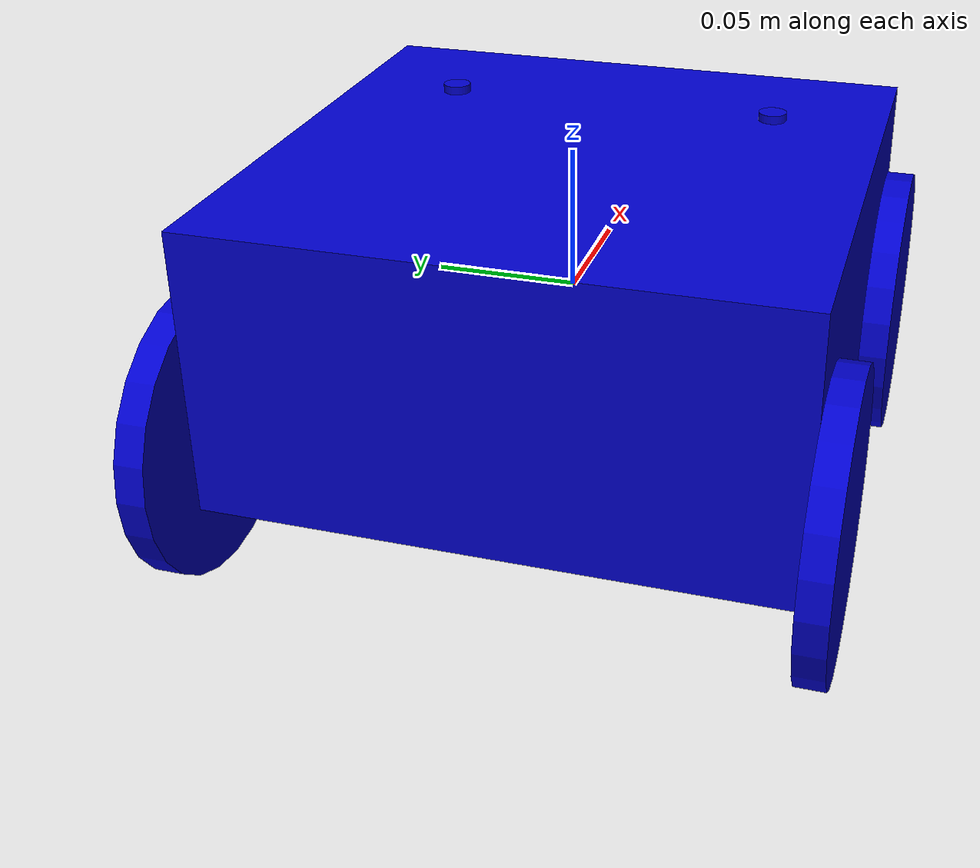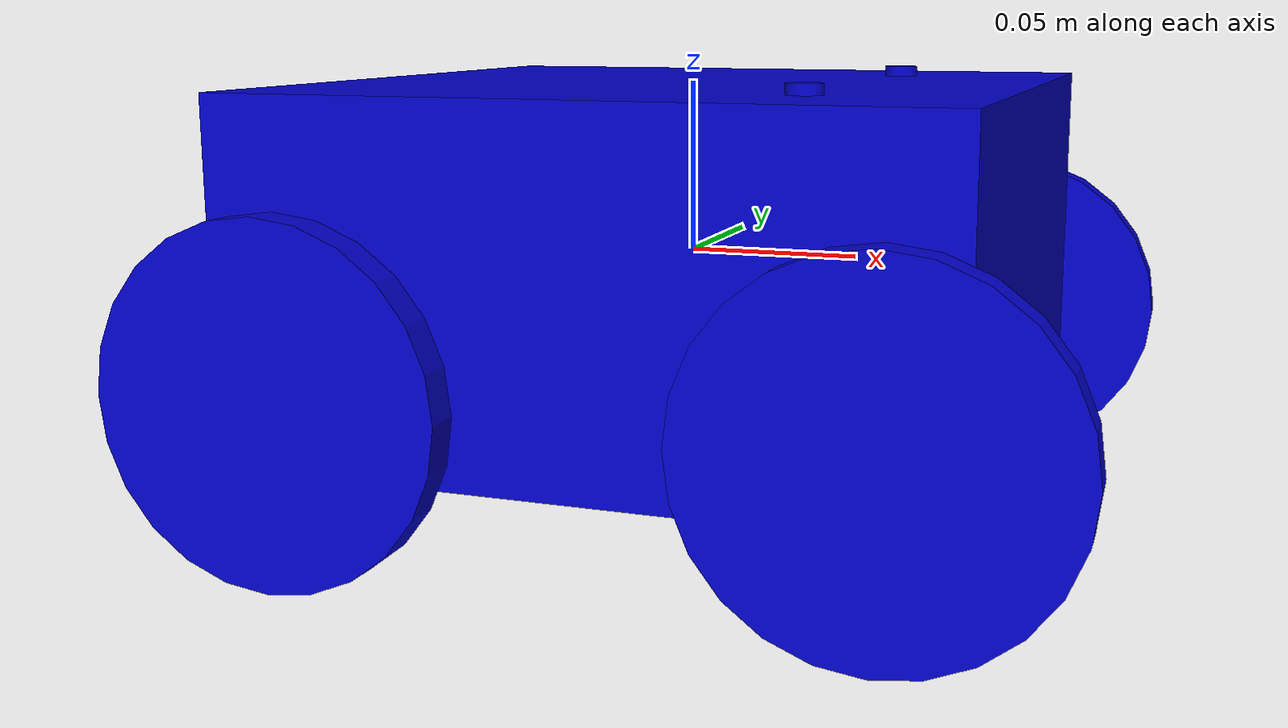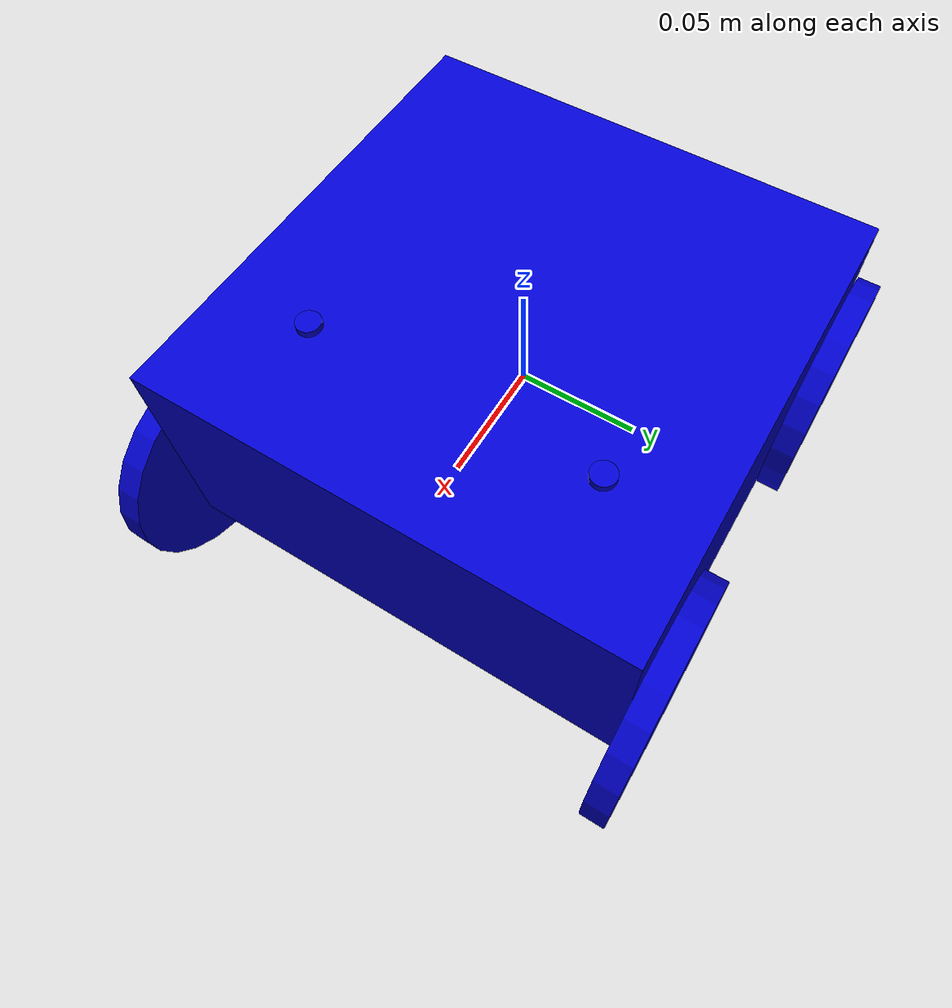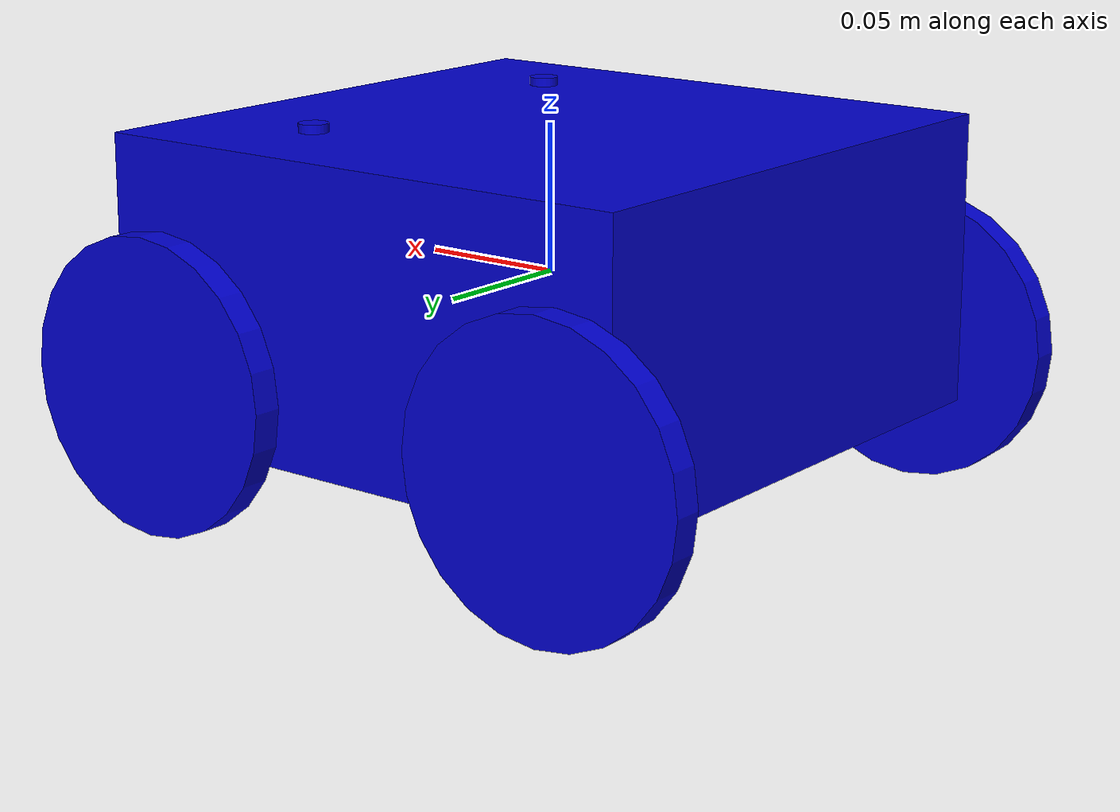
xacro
<?xml version='1.0'?>

<robot name="robot" xmlns:xacro="http://www.ros.org/wiki/xacro">

  <xacro:include filename="$(find robot_sim_track)/models/diff_drive_robot/urdf/diff_drive_robot.gazebo" />
  <xacro:include filename="$(find robot_sim_track)/models/diff_drive_robot/urdf/materials.xacro" />
  <xacro:include filename="$(find robot_sim_track)/models/diff_drive_robot/urdf/wheel.xacro" />
  <xacro:include filename="$(find robot_sim_track)/models/diff_drive_robot/urdf/inertial.urdf.xacro"/>
  <xacro:include filename="$(find robot_sim_track)/models/diff_drive_robot/urdf/lidar.xacro"/>

  <link name="base_link">
    <visual>
      <origin xyz="0.0 0.0 0.0" rpy="0.0 0.0 0.0"/>
      <geometry>
        <box size="0.2 0.2 0.1"/>
      </geometry>
      <material name="blue"/>
    </visual>

    <collision name="base_collision">
      <origin xyz="0.0 0.0 0.0" rpy="0.0 0.0 0.0" />
      <geometry>
        <box size="0.2 0.2 0.1" />
      </geometry>
    </collision>

    <!-- plastic -->
    <xacro:inertial_box mass="5.6" x="0.2" y="0.2" z="0.1">
      <origin xyz="0.0 0.0 0.0" rpy="0.0 0.0 0.0"/>
    </xacro:inertial_box>
  </link>

  <xacro:wheel side="left" x="0.08" y="0.105" z="-0.03" rx="0.0" ry="0.0" rz="0.0" ax="0" ay="1" az="0" color="blue" parent="base_link"/>
  <xacro:wheel side="right" x="0.08" y="-0.105" z="-0.03" rx="0.0" ry="0.0" rz="0.0" ax="0" ay="1" az="0" color="blue" parent="base_link"/>
  <xacro:wheel side="left_np" x="-0.08" y="0.105" z="-0.03" rx="0.0" ry="0.0" rz="0.0" ax="0" ay="1" az="0" color="blue" parent="base_link"/>
  <xacro:wheel side="right_np" x="-0.08" y="-0.105" z="-0.03" rx="0.0" ry="0.0" rz="0.0" ax="0" ay="1" az="0" color="blue" parent="base_link"/>
  <xacro:lidar name ="1" x="0.05" y="0.06" z="0.0515" rx="0.0" ry="0.0" rz="0.45" color="blue" parent="base_link"/>
  <xacro:lidar name ="2" x="0.05" y="-0.06" z="0.0515" rx="0.0" ry="0.0" rz="-0.45" color="blue" parent="base_link"/>
</robot>

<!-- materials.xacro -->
<robot>
    <material name="black">
        <color rgba="0.0 0.0 0.0 1.0"/>
    </material>

    <material name="blue">
        <color rgba="0.0 0.0 0.8 1.0"/>
    </material>

    <material name="green">
        <color rgba="${30/255} ${255/255} ${30/255} 1.0"/>
    </material>

    <material name="red">
        <color rgba="0.8 0.0 0.0 1.0"/>
    </material>
</robot>

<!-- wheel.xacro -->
<robot xmlns:xacro="http://www.ros.org/wiki/xacro">
    <xacro:macro name="wheel" params="side x y z rx ry rz ax ay az color parent">
        <link name='wheel_${side}'>
            <visual name='wheel_${side}_visual'>
                <origin xyz="0.0 0.0 0.0" rpy="0.0 ${pi/2} ${pi/2}"/>
                <geometry>
                    <cylinder length="0.01" radius="0.05"/>
                </geometry>
                <material name="${color}"/>
            </visual>

            <collision name ='wheel_collision'>
                <origin xyz="0.0 0.0 0.0" rpy="0.0 ${pi/2} ${pi/2}"/>
                <geometry>
                    <cylinder length="0.01" radius="0.05"/>
                </geometry>
            </collision>

            <!-- plastic -->
            <xacro:inertial_cylinder mass="0.035" length="0.01" radius="0.05">
                <origin xyz="0.0 0.0 0.0" rpy="0.0 ${pi/2} ${pi/2}"/>
            </xacro:inertial_cylinder>
        </link>

        <joint name="wheel_${side}_joint" type="continuous">
            <origin xyz="${x} ${y} ${z}" rpy="${rx} ${ry} ${rz}"/>
            <axis xyz="${ax} ${ay} ${az}"/>

            <limit effort="100" velocity="50"/>
            <joint_properties damping="0.0" friction="0.0"/>

            <child link="wheel_${side}"/>
            <parent link="${parent}"/>
        </joint>
    </xacro:macro>
</robot>

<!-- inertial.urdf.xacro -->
<robot xmlns:xacro="http://www.ros.org/wiki/xacro">
    <xacro:macro name="inertial_sphere" params="mass radius *origin">
        <inertial>
            <xacro:insert_block name="origin"/>
            <mass value="${mass}" />
            <inertia ixx="${(2/5) * mass * (radius*radius)}" ixy="0.0" ixz="0.0"
                    iyy="${(2/5) * mass * (radius*radius)}" iyz="0.0"
                    izz="${(2/5) * mass * (radius*radius)}" />
        </inertial>
    </xacro:macro>

    <xacro:macro name="inertial_box" params="mass x y z *origin">
        <inertial>
            <xacro:insert_block name="origin"/>
            <mass value="${mass}" />
            <inertia ixx="${(1/12) * mass * (y*y+z*z)}" ixy="0.0" ixz="0.0"
                    iyy="${(1/12) * mass * (x*x+z*z)}" iyz="0.0"
                    izz="${(1/12) * mass * (x*x+y*y)}" />
        </inertial>
    </xacro:macro>

    <xacro:macro name="inertial_cylinder" params="mass length radius *origin">
        <inertial>
            <xacro:insert_block name="origin"/>
            <mass value="${mass}" />
            <inertia ixx="${(1/12) * mass * (3*radius*radius + length*length)}" ixy="0.0" ixz="0.0"
                    iyy="${(1/12) * mass * (3*radius*radius + length*length)}" iyz="0.0"
                    izz="${(1/2) * mass * (radius*radius)}" />
        </inertial>
    </xacro:macro>
</robot>

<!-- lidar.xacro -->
<robot xmlns:xacro="http://www.ros.org/wiki/xacro">
    <xacro:macro name="lidar" params="name x y z rx ry rz color parent">
        <link name='lidar_${name}'>
            <visual name='lidar_${name}_visual'>
                <origin xyz="0.0 0.0 0.0" rpy="0.0 0.0 0.0"/>
                <geometry>
                    <cylinder length="0.003" radius="0.005"/>
                </geometry>
                <material name="${color}"/>
            </visual>

            <collision name ='lidar_${name}_collision'>
                <origin xyz="0.0 0.0 0.0" rpy="0.0 0.0 0.0"/>
                <geometry>
                    <cylinder length="0.003" radius="0.005"/>
                </geometry>
            </collision>

            <!-- plastic -->
            <xacro:inertial_cylinder mass="0.000105" length="0.003" radius="0.005">
                <origin xyz="0.0 0.0 0.0" rpy="0.0 0.0 0.0"/>
            </xacro:inertial_cylinder>
        </link>

        <joint name="lidar_joint_${name}" type="fixed">
            <origin xyz="${x} ${y} ${z}" rpy="${rx} ${ry} ${rz}"/>
            <child link="lidar_${name}"/>
            <parent link="${parent}"/>
        </joint>
    </xacro:macro>
</robot>
